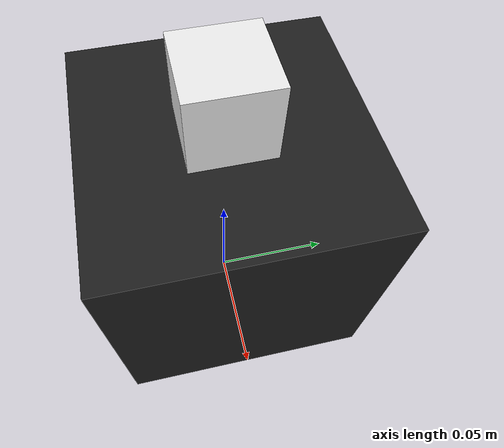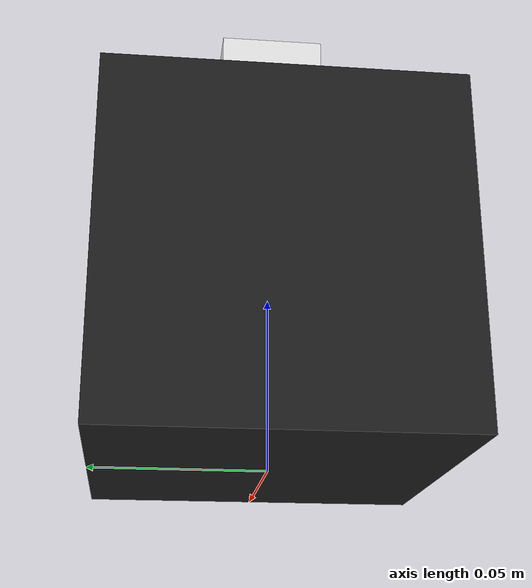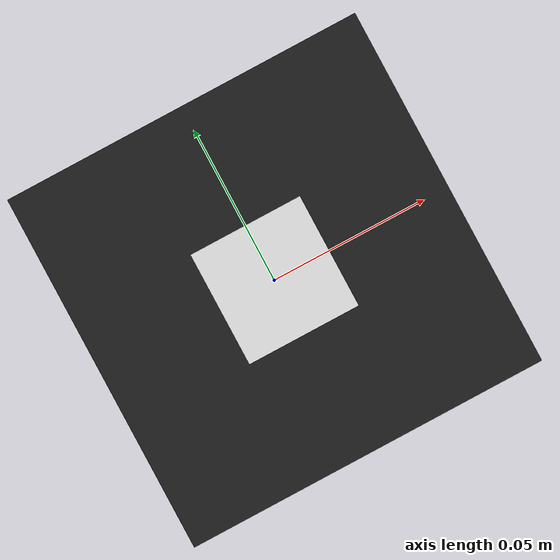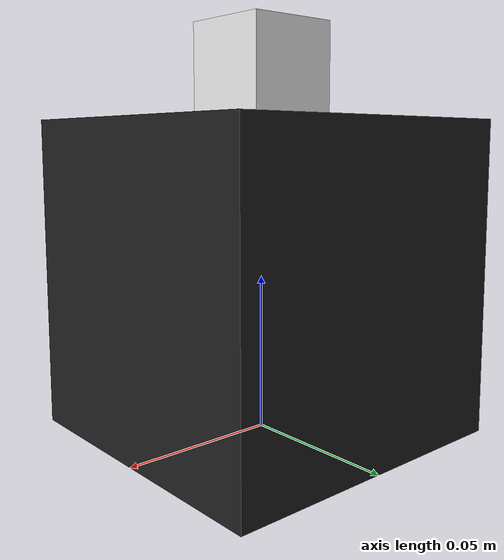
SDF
<?xml version="1.0"?>

<sdf version="1.4">
    <model name="imu_mount">
        <static>false</static>
        <pose>0 0 0 0 0 0</pose> <!-- dimensions are measured from the center of the model-->

        <link name="payload">
            <pose>0 0 0.05 0 0 0</pose>
            <inertial>
                <pose>0 0 0 0 0 0</pose><!-- at the center of the block-->
                <inertia>
                    <!-- values for mass = 10 -->
                    <ixx>0.0333</ixx>
                    <ixy>0</ixy>
                    <ixz>0</ixz>
                    <iyy>0.0333</iyy>
                    <iyz>0</iyz>
                    <izz>0.0067</izz>
                </inertia>
                <mass>1.0</mass>
            </inertial>
            <collision name="payload_collision">
                <geometry>
                    <box>
                        <size>0.1 0.1 0.1</size>
                    </box>
                </geometry>
            </collision>
            <visual name="payload_visual">
                <geometry>
                    <box>
                        <size>0.1 0.1 0.1</size>
                    </box>
                </geometry>
                <material>
                    <script>
                        <uri>file://media/materials/scripts/gazebo.material</uri>
                        <name>Gazebo/Black</name>
                    </script>
                </material>
            </visual>
        </link>
        <link name="imu_sensor">
            <pose>0 0 0.115 0 0 0</pose>
            <inertial>
                <pose>0 0 0 0 0 0</pose>
                <inertia>
                    <!-- assign some small values for the physics engine to evaluate, change them later on -->
                    <ixx>0.001</ixx>
                    <ixy>0</ixy>
                    <ixz>0</ixz>
                    <iyy>0.001</iyy>
                    <iyz>0</iyz>
                    <izz>0.001</izz>
                </inertia>
                <mass>0.05</mass>
            </inertial>
            <collision name="imu_collision">
                <geometry>
                    <box>
                        <size>0.03 0.03 0.03</size>
                    </box>
                </geometry>
            </collision>
            <visual name="imu_visual">
                <geometry>
                    <box>
                        <size>0.03 0.03 0.03</size>
                    </box>
                </geometry>
                <material>
                    <script>
                        <uri>file://media/materials/scripts/gazebo.material</uri>
                        <name>Gazebo/White</name>
                    </script>
                </material>
            </visual>
            <sensor name="main_imu" type="imu">
                <always_on>1</always_on>
                <update_rate>50</update_rate>
                <visualize>1</visualize>
                <pose>0 0 0 0 0 0</pose>
                <imu>
                    <topic>/imu_main/data_raw</topic>
                    <noise>
                        <type>gaussian</type>
                        <rate>  <!-- in rad/s -->
                            <mean>0</mean>
                            <stddev>0</stddev>
                            <bias_mean>0</bias_mean>
                            <bias_stddev>0</bias_stddev>
                        </rate>
                        <accel> <!-- in m/s^2 -->
                            <mean>0</mean>
                            <stddev>0</stddev>
                            <bias_mean>0</bias_mean>
                            <bias_stddev>0</bias_stddev>
                        </accel>
                    </noise>
                </imu>
            </sensor>
        </link>

        <joint name="imu_mount" type="revolute">
            <child>imu_sensor</child>
            <parent>payload</parent>
            <axis>
                <limit>
                    <lower>0</lower>
                    <upper>0</upper>
                </limit>
                <xyz>0 0 1</xyz>
            </axis>
        </joint>

    </model>
</sdf>
